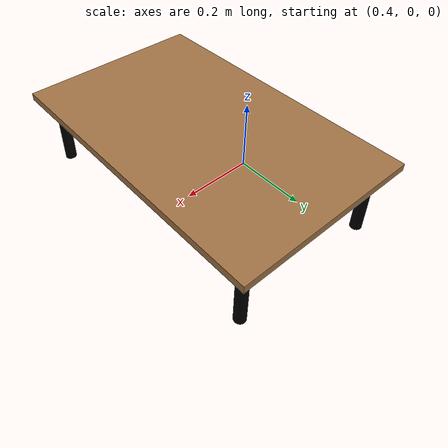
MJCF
<mujoco model="table">
    <asset>
        <texture name="wood" type="2d" file="../Environment/objects_assets/common/textures/wood0.png"/>
        <material name="wood_mat" rgba='0.9 0.9 0.9 1' texture="wood" texrepeat="5 5" reflectance="0.0"/>
        <material name="leg_mat" rgba='0.0 0.0 0.0 1' reflectance="0.0"/>
    </asset>
    <worldbody>
        <!-- Table Top -->
        <body name="table" pos="0.55 0.0 0.2">
            <geom name="table_top" type="box" size="0.25 0.4 0.01" material="wood_mat"/>
            <!-- Table Legs -->
            <body name="leg1" pos="-0.2 -0.35 -0.1">
                <geom type="cylinder" size="0.015 0.1 0.1" material="leg_mat"/>
            </body>
            <body name="leg2" pos="0.2 -0.35 -0.1">
                <geom type="cylinder" size="0.015 0.1 0.1" material="leg_mat"/>
            </body>
            <body name="leg3" pos="-0.2 0.35 -0.1">
                <geom type="cylinder" size="0.015 0.1 0.1" material="leg_mat"/>
            </body>
            <body name="leg4" pos="0.2 0.35 -0.1">
                <geom type="cylinder" size="0.015 0.1 0.1" material="leg_mat"/>
            </body>
        </body>
    </worldbody>
</mujoco>
